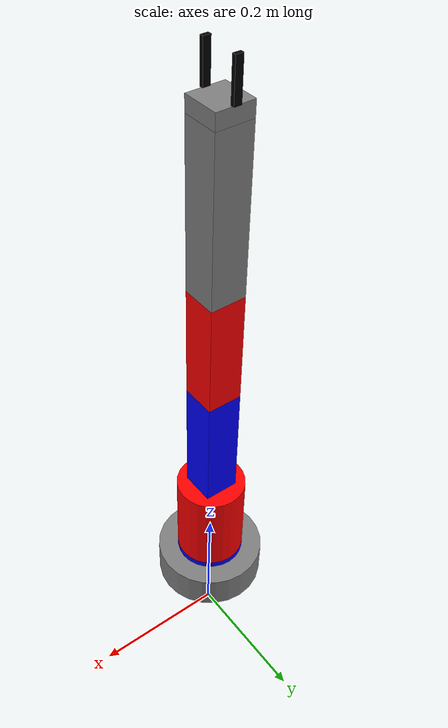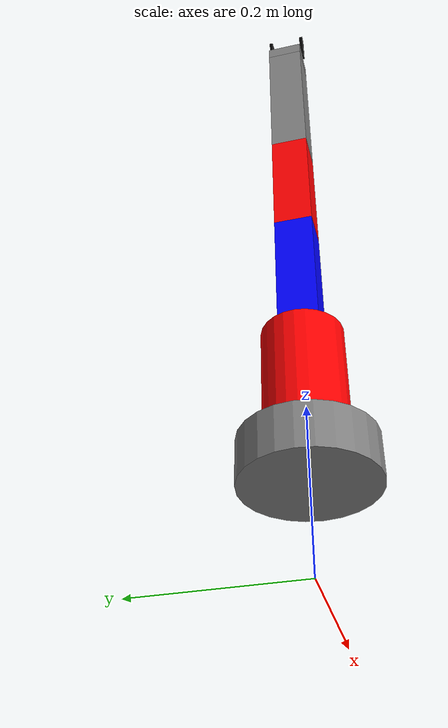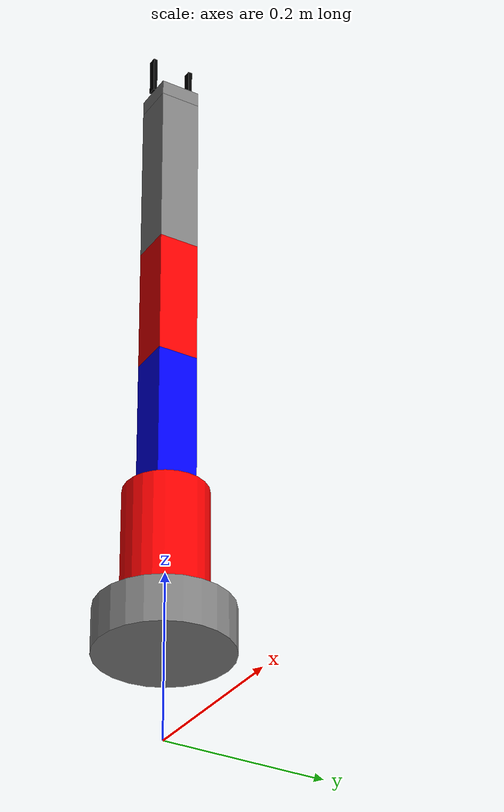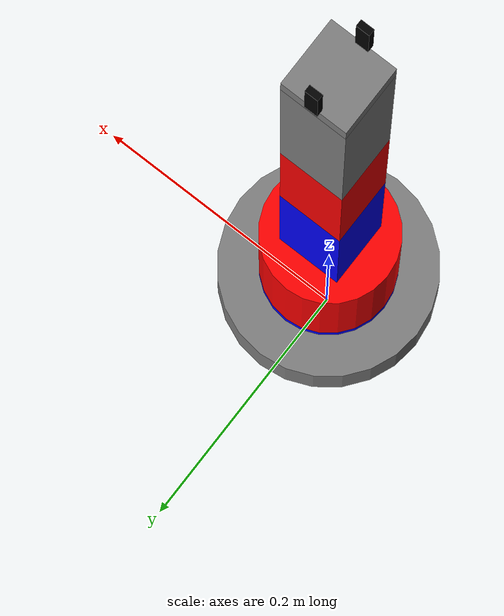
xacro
<?xml version="1.0"?>
<robot xmlns:xacro="http://www.ros.org/wiki/xacro" name="my_robot_arm">

  <!-- Properties -->
  <xacro:property name="base_height" value="0.0555"/>
  <xacro:property name="B1_height" value="0.01"/>
  <xacro:property name="B2_height" value="0.1364"/>
  <xacro:property name="arm_inf_height" value="0.1752"/>
  <xacro:property name="arm_sup_height" value="0.16089"/>
  <xacro:property name="gripper_length" value="0.2"/>
  <xacro:property name="link_radius" value="0.05"/>
  <!-- New properties for end effector -->
  <xacro:property name="end_effector_height" value="0.21823"/>
  <xacro:property name="end_effector_plate_height" value="0.02"/>
  <xacro:property name="finger_length" value="0.05"/>
  <xacro:property name="finger_width" value="0.01"/>
  <xacro:property name="finger_thickness" value="0.005"/>
  <xacro:property name="gripper_opening" value="0.05"/>

  <!-- Materials -->
  <material name="blue">
    <color rgba="0.0 0.0 1.0 1.0"/>
  </material>
  <material name="red">
    <color rgba="1.0 0.0 0.0 1.0"/>
  </material>
  <material name="gray">
    <color rgba="0.5 0.5 0.5 1.0"/>
  </material>
  <material name="black">
    <color rgba="0.0 0.0 0.0 1.0"/>
  </material>

  <link name="world"/>

  <joint name="ground" type="fixed">
    <parent link="world"/>
    <child link="base_link"/>
    <origin xyz="0 0 0.1" rpy="0 0 0"/>
    <axis xyz="0 0 1"/>
  </joint>

  <!-- Base Link -->
  <link name="base_link">
    <visual>
      <geometry>
        <cylinder radius="0.08" length="${base_height}"/>
      </geometry>
      <material name="gray"/>
      <origin xyz="0 0 ${base_height/2}" rpy="0 0 0"/>
    </visual>
    <collision>
      <geometry>
        <cylinder radius="0.08" length="${base_height}"/>
      </geometry>
      <origin xyz="0 0 ${base_height/2}" rpy="0 0 0"/>
    </collision>
    <inertial>
      <mass value="1.0"/>
      <origin xyz="0 0 ${base_height/2}"/>
      <inertia ixx="0.01" ixy="0.0" ixz="0.0" iyy="0.01" iyz="0.0" izz="0.01"/>
    </inertial>
  </link>

  <joint name="joint1" type="fixed">
    <parent link="base_link"/>
    <child link="B1_fixe"/>
    <origin xyz="0 0 ${base_height}" rpy="0 0 0"/>
    <axis xyz="0 0 1"/>
  </joint>

  <!-- First Link -->
  <link name="B1_fixe">
    <visual>
      <geometry>
        <cylinder radius="${link_radius}" length="${B1_height}"/>
      </geometry>
      <material name="blue"/>
      <origin xyz="0 0 ${B1_height/2}" rpy="0 0 0"/>
    </visual>
    <collision>
      <geometry>
        <cylinder radius="${link_radius}" length="${B1_height}"/>
      </geometry>
      <origin xyz="0 0 ${B1_height/2}" rpy="0 0 0"/>
    </collision>
    <inertial>
      <mass value="0.01"/>
      <origin xyz="0 0 ${B1_height/2}"/>
      <inertia ixx="0.0001" ixy="0.0" ixz="0.0" iyy="0.0001" iyz="0.0" izz="0.0001"/>
    </inertial>
  </link>

  <joint name="joint2" type="revolute">
    <parent link="B1_fixe"/>
    <child link="B2"/>
    <origin xyz="0 0 ${B1_height}" rpy="0 0 0"/>
    <axis xyz="0 0 1"/>
    <limit lower="-3.14159" upper="3.14159" effort="10" velocity="1"/>
  </joint>

  <link name="B2">
    <visual>
      <geometry>
        <cylinder radius="${link_radius}" length="${B2_height}"/>
      </geometry>
      <material name="red"/>
      <origin xyz="0 0 ${B2_height/2}" rpy="0 0 0"/>
    </visual>
    <collision>
      <geometry>
        <cylinder radius="${link_radius}" length="${B2_height}"/>
      </geometry>
      <origin xyz="0 0 ${B2_height/2}" rpy="0 0 0"/>
    </collision>
    <inertial>
      <mass value="0.1"/>
      <origin xyz="0 0 ${B2_height/2}"/>
      <inertia ixx="0.0001" ixy="0.0" ixz="0.0" iyy="0.0001" iyz="0.0" izz="0.000001"/>
    </inertial>
  </link>

  <joint name="joint3" type="revolute">
    <parent link="B2"/>
    <child link="arm_inf"/>
    <origin xyz="0 0 ${B2_height}" rpy="0 0 0"/>
    <axis xyz="1 0 0"/>
    <limit lower="-2.26893" upper="2.26893" effort="10" velocity="1"/>
  </joint>

  <link name="arm_inf">
    <visual>
      <geometry>
        <box size="0.05 0.05 ${arm_inf_height}"/>
      </geometry>
      <material name="blue"/>
      <origin xyz="0 0 ${arm_inf_height/2}" rpy="0 0 0"/>
    </visual>
    <collision>
      <geometry>
        <box size="0.05 0.05 ${arm_inf_height}"/>
      </geometry>
      <origin xyz="0 0 ${arm_inf_height/2}" rpy="0 0 0"/>
    </collision>
    <inertial>
      <mass value="0.1"/>
      <origin xyz="0 0 ${arm_inf_height/2}"/>
      <inertia ixx="0.0001" ixy="0.0" ixz="0.0" iyy="0.0001" iyz="0.0" izz="0.0001"/>
    </inertial>
  </link>

  <joint name="joint4" type="revolute">
    <parent link="arm_inf"/>
    <child link="arm_sup"/>
    <origin xyz="0 0 ${arm_inf_height}" rpy="0 0 0"/>
    <axis xyz="1 0 0"/>
    <limit lower="-1.57" upper="1.65806" effort="10" velocity="1"/>
  </joint>

  <link name="arm_sup">
    <visual>
      <geometry>
        <box size="0.05 0.05 ${arm_sup_height}"/>
      </geometry>
      <material name="red"/>
      <origin xyz="0 0 ${arm_sup_height/2}" rpy="0 0 0"/>
    </visual>
    <collision>
      <geometry>
        <box size="0.05 0.05 ${arm_sup_height}"/>
      </geometry>
      <origin xyz="0 0 ${arm_sup_height/2}" rpy="0 0 0"/>
    </collision>
    <inertial>
      <mass value="0.2"/>
      <origin xyz="0 0 ${arm_sup_height/2}"/>
      <inertia ixx="0.0001" ixy="0.0" ixz="0.0" iyy="0.0001" iyz="0.0" izz="0.0001"/>
    </inertial>
  </link>

  <joint name="joint5" type="revolute">
    <parent link="arm_sup"/>
    <child link="end_effector_base"/>
    <origin xyz="0 0 ${arm_sup_height}" rpy="0 0 0"/>
    <axis xyz="1 0 0"/>
    <limit lower="-1.57" upper="1.65806" effort="10" velocity="1"/>
  </joint>

  <!-- End Effector Base Link -->
  <link name="end_effector_base">
    <visual>
      <geometry>
        <box size="0.05 0.05 ${end_effector_height}"/>
      </geometry>
      <material name="gray"/>
      <origin xyz="0 0 ${end_effector_height/2}" rpy="0 0 0"/>
    </visual>
    <collision>
      <geometry>
        <box size="0.05 0.05 ${end_effector_height}"/>
      </geometry>
      <origin xyz="0 0 ${end_effector_height/2}" rpy="0 0 0"/>
    </collision>
    <inertial>
      <mass value="0.1"/>
      <origin xyz="0 0 ${end_effector_height/2}"/>
      <inertia ixx="0.0001" ixy="0.0" ixz="0.0" iyy="0.0001" iyz="0.0" izz="0.0001"/>
    </inertial>
  </link>

  <!-- End Effector Rotation Joint -->
  <joint name="end_effector_rotation" type="revolute">
    <parent link="end_effector_base"/>
    <child link="gripper_base"/>
    <origin xyz="0 0 ${end_effector_height}" rpy="0 0 0"/>
    <axis xyz="0 0 1"/>
    <limit lower="-3.14159" upper="3.14159" effort="10" velocity="1"/>
  </joint>

  <!-- Gripper Base Link -->
  <link name="gripper_base">
    <visual>
      <geometry>
        <box size="0.05 0.05 ${end_effector_plate_height}"/>
      </geometry>
      <material name="gray"/>
      <origin xyz="0 0 ${end_effector_plate_height/2}" rpy="0 0 0"/>
    </visual>
    <collision>
      <geometry>
        <box size="0.05 0.05 ${end_effector_plate_height}"/>
      </geometry>
      <origin xyz="0 0 ${end_effector_plate_height/2}" rpy="0 0 0"/>
    </collision>
    <inertial>
      <mass value="0.1"/>
      <origin xyz="0 0 ${end_effector_plate_height/2}"/>
      <inertia ixx="0.0001" ixy="0.0" ixz="0.0" iyy="0.0001" iyz="0.0" izz="0.0001"/>
    </inertial>
  </link>

  <!-- Left Finger -->
  <link name="left_finger">
    <visual>
      <geometry>
        <box size="${finger_width} ${finger_thickness} ${finger_length}"/>
      </geometry>
      <material name="black"/>
      <origin xyz="0 0 ${finger_length/2}" rpy="0 0 0"/>
    </visual>
    <collision>
      <geometry>
        <box size="${finger_width} ${finger_thickness} ${finger_length}"/>
      </geometry>
      <origin xyz="0 0 ${finger_length/2}" rpy="0 0 0"/>
    </collision>
    <inertial>
      <mass value="0.01"/>
      <origin xyz="0 0 ${finger_length/2}"/>
      <inertia ixx="0.0001" ixy="0.0" ixz="0.0" iyy="0.0001" iyz="0.0" izz="0.0001"/>
    </inertial>
  </link>

  <!-- Right Finger -->
  <link name="right_finger">
    <visual>
      <geometry>
        <box size="${finger_width} ${finger_thickness} ${finger_length}"/>
      </geometry>
      <material name="black"/>
      <origin xyz="0 0 ${finger_length/2}" rpy="0 0 0"/>
    </visual>
    <collision>
      <geometry>
        <box size="${finger_width} ${finger_thickness} ${finger_length}"/>
      </geometry>
      <origin xyz="0 0 ${finger_length/2}" rpy="0 0 0"/>
    </collision>
    <inertial>
      <mass value="0.01"/>
      <origin xyz="0 0 ${finger_length/2}"/>
      <inertia ixx="0.0001" ixy="0.0" ixz="0.0" iyy="0.0001" iyz="0.0" izz="0.0001"/>
    </inertial>
  </link>

  <!-- Left Finger Joint -->
  <joint name="left_finger_joint" type="prismatic">
    <parent link="gripper_base"/>
    <child link="left_finger"/>
    <origin xyz="0 ${gripper_opening/2} ${end_effector_plate_height}" rpy="0 0 0"/>
    <axis xyz="0 1 0"/>
    <limit lower="0" upper="${gripper_opening/2}" effort="10" velocity="0.5"/>
  </joint>

  <!-- Right Finger Joint -->
  <joint name="right_finger_joint" type="prismatic">
    <parent link="gripper_base"/>
    <child link="right_finger"/>
    <origin xyz="0 -${gripper_opening/2} ${end_effector_plate_height}" rpy="0 0 0"/>
    <axis xyz="0 -1 0"/>
    <limit lower="0" upper="${gripper_opening/2}" effort="10" velocity="0.5"/>
  </joint>

  <!-- ros2_control configuration -->
  <ros2_control name="my_robot_arm" type="system">
    <hardware>
      <plugin>mock_components/GenericSystem</plugin>
    </hardware>
    <joint name="joint2">
      <command_interface name="position"/>
      <state_interface name="position"/>
      <state_interface name="velocity"/>
    </joint>
    <joint name="joint3">
      <command_interface name="position"/>
      <state_interface name="position"/>
      <state_interface name="velocity"/>
    </joint>
    <joint name="joint4">
      <command_interface name="position"/>
      <state_interface name="position"/>
      <state_interface name="velocity"/>
    </joint>
    <joint name="joint5">
      <command_interface name="position"/>
      <state_interface name="position"/>
      <state_interface name="velocity"/>
    </joint>
    <joint name="end_effector_rotation">
      <command_interface name="position"/>
      <state_interface name="position"/>
      <state_interface name="velocity"/>
    </joint>
    <joint name="left_finger_joint">
      <command_interface name="position"/>
      <state_interface name="position"/>
      <state_interface name="velocity"/>
    </joint>
    <joint name="right_finger_joint">
      <command_interface name="position"/>
      <state_interface name="position"/>
      <state_interface name="velocity"/>
    </joint>
  </ros2_control>

</robot>
